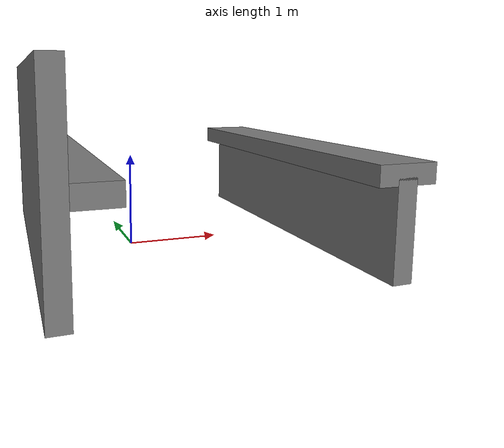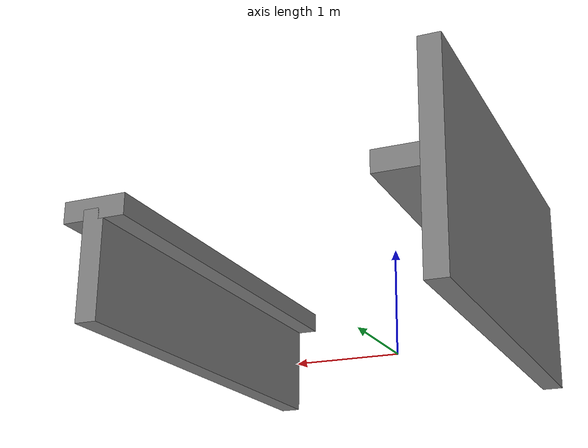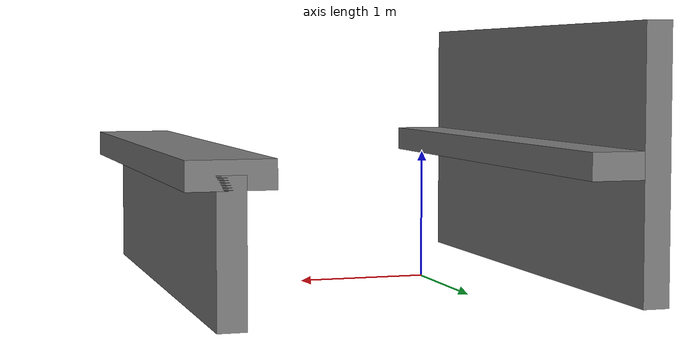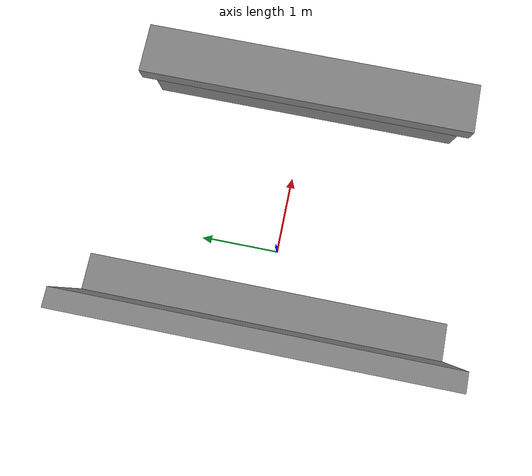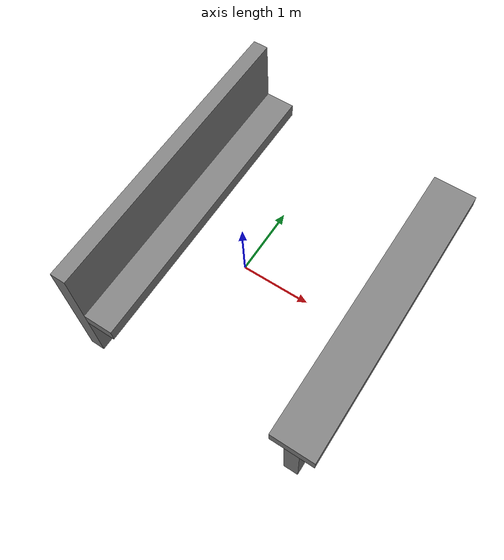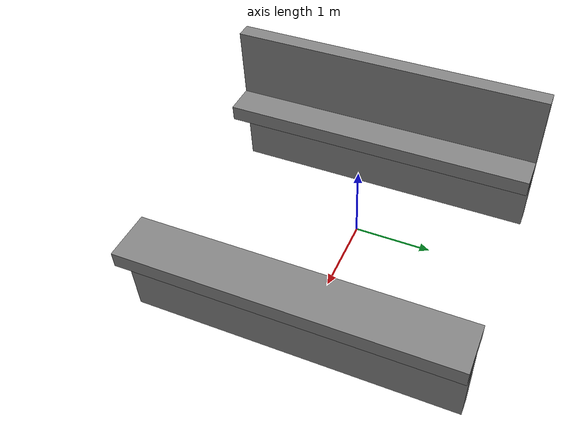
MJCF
<mujoco>
  <asset>
    <mesh name="shop" content_type="model/stl" file="./meshes/shop.stl" scale="1 1 1"/>
  </asset>
  <worldbody>
    <body name="shop" pos="-1 0 1" quat="0.7071  0  0  0.7071">

      <geom name="desk" type="box"
            pos="0 0 0.0" size="2 0.1 1"/>
      <geom name="shelving" type="box"
            pos="0 -0.3 0.0" size="2 0.2 0.1"/>
      <geom name="board" type="box"
            pos="0 -3 0" size="2 0.3 0.1"/>
      <geom name="leg" type="box"
            pos="0 -3 -0.5" size="2 0.1 0.5"/>

    </body>
  </worldbody>
</mujoco>
